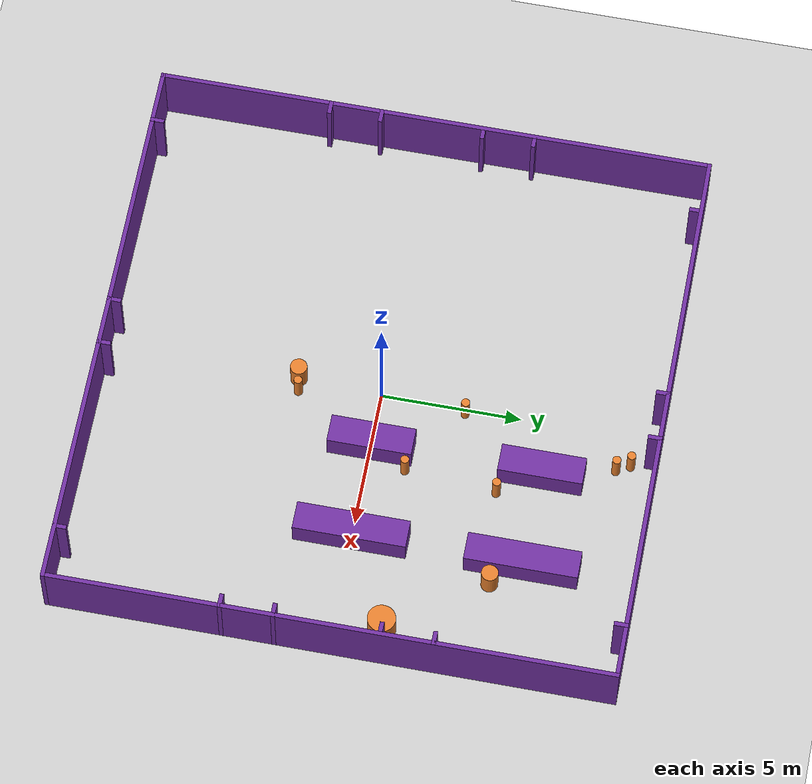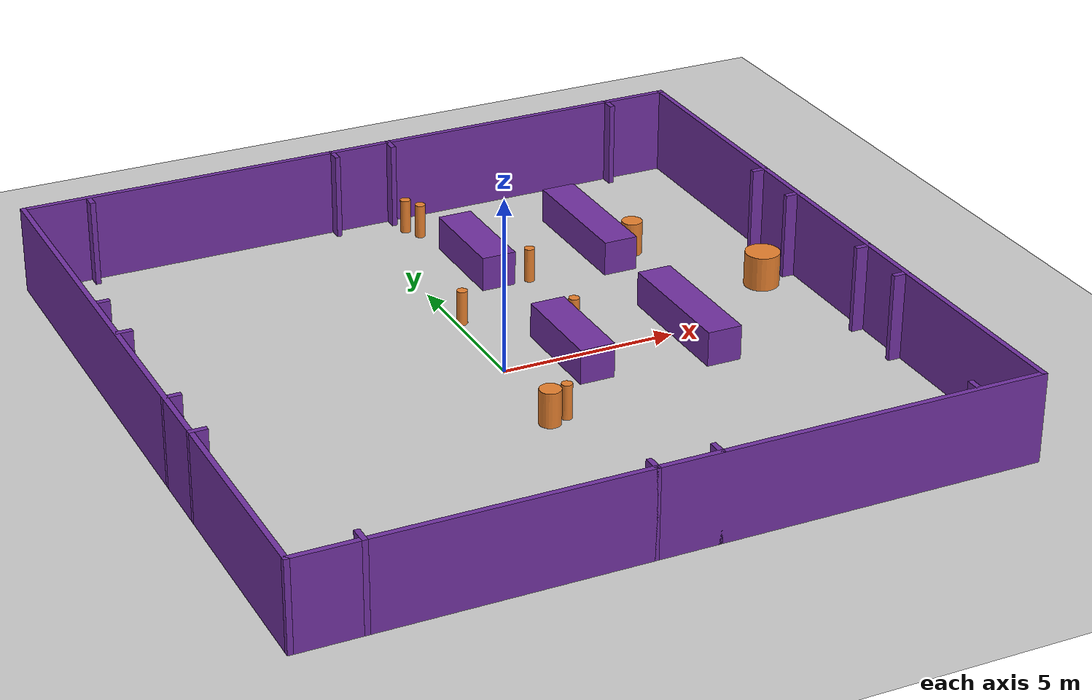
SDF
<sdf version="1.7">
 <world name="default">
  <model name="ground_plane">
   <static>1</static>
   <link name="link">
    <collision name="collision">
     <geometry><plane><normal>0 0 1</normal><size>100 100</size></plane></geometry>
     <surface>
      <contact><collide_bitmask>65535</collide_bitmask></contact>
      <friction><ode><mu>100</mu><mu2>50</mu2></ode></friction>
     </surface>
    </collision>
    <visual name="visual">
     <cast_shadows>0</cast_shadows>
     <geometry><plane><normal>0 0 1</normal><size>100 100</size></plane></geometry>
     <material>
      <script><uri>file://media/materials/scripts/gazebo.material</uri><name>Gazebo/Grey</name></script>
     </material>
    </visual>
   </link>
  </model>
  <model name="B_1_4_2">
   <link name="link_0">
    <inertial>
     <mass>40</mass>
     <inertia><ixx>56.6667</ixx><ixy>0</ixy><ixz>0</ixz><iyy>6.66667</iyy><iyz>0</iyz><izz>56.6667</izz></inertia>
    </inertial>
    <visual name="visual">
     <geometry><box><size>1 4 1</size></box></geometry>
     <material>
      <lighting>1</lighting>
      <script><uri>file://media/materials/scripts/gazebo.material</uri><name>Gazebo/Grey</name></script>
      <shader type="pixel"><normal_map>__default__</normal_map></shader>
      <ambient>0.44 0.19 0.63 1</ambient>
      <diffuse>0.7 0.7 0.7 1</diffuse>
      <specular>0.01 0.01 0.01 1</specular>
      <emissive>0 0 0 1</emissive>
     </material>
    </visual>
    <collision name="collision">
     <geometry><box><size>1 4 1</size></box></geometry>
     <surface>
      <friction>
       <ode><mu>1</mu><mu2>1</mu2><fdir1>0 0 0</fdir1><slip1>0</slip1><slip2>0</slip2></ode>
       <torsional>
        <coefficient>1</coefficient>
        <patch_radius>0</patch_radius>
        <surface_radius>0</surface_radius>
        <use_patch_radius>1</use_patch_radius>
        <ode><slip>0</slip></ode>
       </torsional>
      </friction>
      <bounce><restitution_coefficient>0</restitution_coefficient><threshold>1e+06</threshold></bounce>
      <contact>
       <collide_without_contact>0</collide_without_contact>
       <collide_without_contact_bitmask>1</collide_without_contact_bitmask>
       <collide_bitmask>1</collide_bitmask>
       <ode>
        <soft_cfm>0</soft_cfm>
        <soft_erp>0.2</soft_erp>
        <kp>1e+13</kp>
        <kd>1</kd>
        <max_vel>0.01</max_vel>
        <min_depth>0</min_depth>
       </ode>
       <bullet>
        <split_impulse>1</split_impulse>
        <split_impulse_penetration_threshold>-0.01</split_impulse_penetration_threshold>
        <soft_cfm>0</soft_cfm>
        <soft_erp>0.2</soft_erp>
        <kp>1e+13</kp>
        <kd>1</kd>
       </bullet>
      </contact>
     </surface>
    </collision>
   </link>
   <static>0</static>
   <pose>5.52612 6.00951 0.5 0 -0 0</pose>
  </model>
  <model name="B_1_4_3">
   <link name="link_0">
    <inertial>
     <mass>40</mass>
     <inertia><ixx>56.6667</ixx><ixy>0</ixy><ixz>0</ixz><iyy>6.66667</iyy><iyz>0</iyz><izz>56.6667</izz></inertia>
    </inertial>
    <visual name="visual">
     <geometry><box><size>1 4 1</size></box></geometry>
     <material>
      <lighting>1</lighting>
      <script><uri>file://media/materials/scripts/gazebo.material</uri><name>Gazebo/Grey</name></script>
      <shader type="pixel"><normal_map>__default__</normal_map></shader>
      <ambient>0.44 0.19 0.63 1</ambient>
      <diffuse>0.7 0.7 0.7 1</diffuse>
      <specular>0.01 0.01 0.01 1</specular>
      <emissive>0 0 0 1</emissive>
     </material>
    </visual>
    <collision name="collision">
     <geometry><box><size>1 4 1</size></box></geometry>
     <surface>
      <friction>
       <ode><mu>1</mu><mu2>1</mu2><fdir1>0 0 0</fdir1><slip1>0</slip1><slip2>0</slip2></ode>
       <torsional>
        <coefficient>1</coefficient>
        <patch_radius>0</patch_radius>
        <surface_radius>0</surface_radius>
        <use_patch_radius>1</use_patch_radius>
        <ode><slip>0</slip></ode>
       </torsional>
      </friction>
      <bounce><restitution_coefficient>0</restitution_coefficient><threshold>1e+06</threshold></bounce>
      <contact>
       <collide_without_contact>0</collide_without_contact>
       <collide_without_contact_bitmask>1</collide_without_contact_bitmask>
       <collide_bitmask>1</collide_bitmask>
       <ode>
        <soft_cfm>0</soft_cfm>
        <soft_erp>0.2</soft_erp>
        <kp>1e+13</kp>
        <kd>1</kd>
        <max_vel>0.01</max_vel>
        <min_depth>0</min_depth>
       </ode>
       <bullet>
        <split_impulse>1</split_impulse>
        <split_impulse_penetration_threshold>-0.01</split_impulse_penetration_threshold>
        <soft_cfm>0</soft_cfm>
        <soft_erp>0.2</soft_erp>
        <kp>1e+13</kp>
        <kd>1</kd>
       </bullet>
      </contact>
     </surface>
    </collision>
   </link>
   <static>0</static>
   <pose>5.49347 -0.022705 0.5 0 -0 0</pose>
  </model>
  <model name="B_1_3_0">
   <link name="link_1">
    <inertial>
     <mass>30</mass>
     <inertia><ixx>25</ixx><ixy>0</ixy><ixz>0</ixz><iyy>5</iyy><iyz>0</iyz><izz>25</izz></inertia>
    </inertial>
    <visual name="visual">
     <geometry><box><size>1 3 1</size></box></geometry>
     <material>
      <lighting>1</lighting>
      <script><uri>file://media/materials/scripts/gazebo.material</uri><name>Gazebo/Grey</name></script>
      <shader type="pixel"><normal_map>__default__</normal_map></shader>
      <ambient>0.44 0.19 0.63 1</ambient>
      <diffuse>0.7 0.7 0.7 1</diffuse>
      <specular>0.01 0.01 0.01 1</specular>
      <emissive>0 0 0 1</emissive>
     </material>
    </visual>
    <collision name="collision">
     <geometry><box><size>1 3 1</size></box></geometry>
     <surface>
      <friction>
       <ode><mu>1</mu><mu2>1</mu2><fdir1>0 0 0</fdir1><slip1>0</slip1><slip2>0</slip2></ode>
       <torsional>
        <coefficient>1</coefficient>
        <patch_radius>0</patch_radius>
        <surface_radius>0</surface_radius>
        <use_patch_radius>1</use_patch_radius>
        <ode><slip>0</slip></ode>
       </torsional>
      </friction>
      <bounce><restitution_coefficient>0</restitution_coefficient><threshold>1e+06</threshold></bounce>
      <contact>
       <collide_without_contact>0</collide_without_contact>
       <collide_without_contact_bitmask>1</collide_without_contact_bitmask>
       <collide_bitmask>1</collide_bitmask>
       <ode>
        <soft_cfm>0</soft_cfm>
        <soft_erp>0.2</soft_erp>
        <kp>1e+13</kp>
        <kd>1</kd>
        <max_vel>0.01</max_vel>
        <min_depth>0</min_depth>
       </ode>
       <bullet>
        <split_impulse>1</split_impulse>
        <split_impulse_penetration_threshold>-0.01</split_impulse_penetration_threshold>
        <soft_cfm>0</soft_cfm>
        <soft_erp>0.2</soft_erp>
        <kp>1e+13</kp>
        <kd>1</kd>
       </bullet>
      </contact>
     </surface>
    </collision>
   </link>
   <static>0</static>
   <pose>1.99632 6.07045 0.5 0 -0 0</pose>
  </model>
  <model name="B_1_3_3">
   <link name="link_1">
    <inertial>
     <mass>30</mass>
     <inertia><ixx>25</ixx><ixy>0</ixy><ixz>0</ixz><iyy>5</iyy><iyz>0</iyz><izz>25</izz></inertia>
    </inertial>
    <visual name="visual">
     <geometry><box><size>1 3 1</size></box></geometry>
     <material>
      <lighting>1</lighting>
      <script><uri>file://media/materials/scripts/gazebo.material</uri><name>Gazebo/Grey</name></script>
      <shader type="pixel"><normal_map>__default__</normal_map></shader>
      <ambient>0.44 0.19 0.63 1</ambient>
      <diffuse>0.7 0.7 0.7 1</diffuse>
      <specular>0.01 0.01 0.01 1</specular>
      <emissive>0 0 0 1</emissive>
     </material>
    </visual>
    <collision name="collision">
     <geometry><box><size>1 3 1</size></box></geometry>
     <surface>
      <friction>
       <ode><mu>1</mu><mu2>1</mu2><fdir1>0 0 0</fdir1><slip1>0</slip1><slip2>0</slip2></ode>
       <torsional>
        <coefficient>1</coefficient>
        <patch_radius>0</patch_radius>
        <surface_radius>0</surface_radius>
        <use_patch_radius>1</use_patch_radius>
        <ode><slip>0</slip></ode>
       </torsional>
      </friction>
      <bounce><restitution_coefficient>0</restitution_coefficient><threshold>1e+06</threshold></bounce>
      <contact>
       <collide_without_contact>0</collide_without_contact>
       <collide_without_contact_bitmask>1</collide_without_contact_bitmask>
       <collide_bitmask>1</collide_bitmask>
       <ode>
        <soft_cfm>0</soft_cfm>
        <soft_erp>0.2</soft_erp>
        <kp>1e+13</kp>
        <kd>1</kd>
        <max_vel>0.01</max_vel>
        <min_depth>0</min_depth>
       </ode>
       <bullet>
        <split_impulse>1</split_impulse>
        <split_impulse_penetration_threshold>-0.01</split_impulse_penetration_threshold>
        <soft_cfm>0</soft_cfm>
        <soft_erp>0.2</soft_erp>
        <kp>1e+13</kp>
        <kd>1</kd>
       </bullet>
      </contact>
     </surface>
    </collision>
   </link>
   <static>0</static>
   <pose>1.99973 0.020044 0.5 0 -0 0</pose>
  </model>
  <model name="shelter_20_20">
   <pose>0.003122 0.05499 0 0 -0 0</pose>
   <link name="Wall_0">
    <collision name="Wall_0_Collision">
     <geometry><box><size>20 0.15 2.5</size></box></geometry>
     <pose>0 0 1.25 0 -0 0</pose>
    </collision>
    <visual name="Wall_0_Visual">
     <pose>0 0 1.25 0 -0 0</pose>
     <geometry><box><size>20 0.15 2.5</size></box></geometry>
     <material>
      <script><uri>file://media/materials/scripts/gazebo.material</uri><name>Gazebo/Grey</name></script>
      <ambient>0.439216 0.188235 0.627451 1</ambient>
     </material>
     <meta><layer>0</layer></meta>
    </visual>
    <pose>-0 9.925 0 0 -0 0</pose>
   </link>
   <link name="Wall_1">
    <collision name="Wall_1_Collision">
     <geometry><box><size>20 0.15 2.5</size></box></geometry>
     <pose>0 0 1.25 0 -0 0</pose>
    </collision>
    <visual name="Wall_1_Visual">
     <pose>0 0 1.25 0 -0 0</pose>
     <geometry><box><size>20 0.15 2.5</size></box></geometry>
     <material>
      <script><uri>file://media/materials/scripts/gazebo.material</uri><name>Gazebo/Grey</name></script>
      <ambient>0.439216 0.188235 0.627451 1</ambient>
     </material>
     <meta><layer>0</layer></meta>
    </visual>
    <pose>9.925 0 0 0 -0 -1.5708</pose>
   </link>
   <link name="Wall_2">
    <collision name="Wall_2_Collision">
     <geometry><box><size>20 0.15 2.5</size></box></geometry>
     <pose>0 0 1.25 0 -0 0</pose>
    </collision>
    <visual name="Wall_2_Visual">
     <pose>0 0 1.25 0 -0 0</pose>
     <geometry><box><size>20 0.15 2.5</size></box></geometry>
     <material>
      <script><uri>file://media/materials/scripts/gazebo.material</uri><name>Gazebo/Grey</name></script>
      <ambient>0.439216 0.188235 0.627451 1</ambient>
     </material>
     <meta><layer>0</layer></meta>
    </visual>
    <pose>-0 -9.925 0 0 -0 3.14159</pose>
   </link>
   <link name="Wall_27">
    <collision name="Wall_27_Collision">
     <geometry><box><size>0.5 0.15 2.5</size></box></geometry>
     <pose>0 0 1.25 0 -0 0</pose>
    </collision>
    <visual name="Wall_27_Visual">
     <pose>0 0 1.25 0 -0 0</pose>
     <geometry><box><size>0.5 0.15 2.5</size></box></geometry>
     <material>
      <script><uri>file://media/materials/scripts/gazebo.material</uri><name>Gazebo/Grey</name></script>
      <ambient>0.439216 0.188235 0.627451 1</ambient>
     </material>
     <meta><layer>0</layer></meta>
    </visual>
    <pose>8.075 -9.75 0 0 -0 1.5708</pose>
   </link>
   <link name="Wall_3">
    <collision name="Wall_3_Collision">
     <geometry><box><size>20 0.15 2.5</size></box></geometry>
     <pose>0 0 1.25 0 -0 0</pose>
    </collision>
    <visual name="Wall_3_Visual">
     <pose>0 0 1.25 0 -0 0</pose>
     <geometry><box><size>20 0.15 2.5</size></box></geometry>
     <material>
      <script><uri>file://media/materials/scripts/gazebo.material</uri><name>Gazebo/Grey</name></script>
      <ambient>0.439216 0.188235 0.627451 1</ambient>
     </material>
     <meta><layer>0</layer></meta>
    </visual>
    <pose>-9.925 0 0 0 -0 1.5708</pose>
   </link>
   <link name="Wall_30">
    <collision name="Wall_30_Collision">
     <geometry><box><size>0.5 0.15 2.5</size></box></geometry>
     <pose>0 0 1.25 0 -0 0</pose>
    </collision>
    <visual name="Wall_30_Visual">
     <pose>0 0 1.25 0 -0 0</pose>
     <geometry><box><size>0.5 0.15 2.5</size></box></geometry>
     <material>
      <script><uri>file://media/materials/scripts/gazebo.material</uri><name>Gazebo/Grey</name></script>
      <ambient>0.439216 0.188235 0.627451 1</ambient>
     </material>
     <meta><layer>0</layer></meta>
    </visual>
    <pose>-8.075 -9.75 0 0 -0 1.5708</pose>
   </link>
   <link name="Wall_33">
    <collision name="Wall_33_Collision">
     <geometry><box><size>0.5 0.15 2.5</size></box></geometry>
     <pose>0 0 1.25 0 -0 0</pose>
    </collision>
    <visual name="Wall_33_Visual">
     <pose>0 0 1.25 0 -0 0</pose>
     <geometry><box><size>0.5 0.15 2.5</size></box></geometry>
     <material>
      <script><uri>file://media/materials/scripts/gazebo.material</uri><name>Gazebo/Grey</name></script>
      <ambient>0.439216 0.188235 0.627451 1</ambient>
     </material>
     <meta><layer>0</layer></meta>
    </visual>
    <pose>-0.775 -9.75 0 0 -0 1.5708</pose>
   </link>
   <link name="Wall_36">
    <collision name="Wall_36_Collision">
     <geometry><box><size>0.5 0.15 2.5</size></box></geometry>
     <pose>0 0 1.25 0 -0 0</pose>
    </collision>
    <visual name="Wall_36_Visual">
     <pose>0 0 1.25 0 -0 0</pose>
     <geometry><box><size>0.5 0.15 2.5</size></box></geometry>
     <material>
      <script><uri>file://media/materials/scripts/gazebo.material</uri><name>Gazebo/Grey</name></script>
      <ambient>0.439216 0.188235 0.627451 1</ambient>
     </material>
     <meta><layer>0</layer></meta>
    </visual>
    <pose>0.925 -9.75 0 0 -0 1.5708</pose>
   </link>
   <link name="Wall_39">
    <collision name="Wall_39_Collision">
     <geometry><box><size>0.5 0.15 2.5</size></box></geometry>
     <pose>0 0 1.25 0 -0 0</pose>
    </collision>
    <visual name="Wall_39_Visual">
     <pose>0 0 1.25 0 -0 0</pose>
     <geometry><box><size>0.5 0.15 2.5</size></box></geometry>
     <material>
      <script><uri>file://media/materials/scripts/gazebo.material</uri><name>Gazebo/Grey</name></script>
      <ambient>0.439216 0.188235 0.627451 1</ambient>
     </material>
     <meta><layer>0</layer></meta>
    </visual>
    <pose>-8.075 9.75 0 0 -0 -1.5708</pose>
   </link>
   <link name="Wall_42">
    <collision name="Wall_42_Collision">
     <geometry><box><size>0.5 0.15 2.5</size></box></geometry>
     <pose>0 0 1.25 0 -0 0</pose>
    </collision>
    <visual name="Wall_42_Visual">
     <pose>0 0 1.25 0 -0 0</pose>
     <geometry><box><size>0.5 0.15 2.5</size></box></geometry>
     <material>
      <script><uri>file://media/materials/scripts/gazebo.material</uri><name>Gazebo/Grey</name></script>
      <ambient>0.439216 0.188235 0.627451 1</ambient>
     </material>
     <meta><layer>0</layer></meta>
    </visual>
    <pose>8.075 9.75 0 0 -0 -1.5708</pose>
   </link>
   <link name="Wall_45">
    <collision name="Wall_45_Collision">
     <geometry><box><size>0.5 0.15 2.5</size></box></geometry>
     <pose>0 0 1.25 0 -0 0</pose>
    </collision>
    <visual name="Wall_45_Visual">
     <pose>0 0 1.25 0 -0 0</pose>
     <geometry><box><size>0.5 0.15 2.5</size></box></geometry>
     <material>
      <script><uri>file://media/materials/scripts/gazebo.material</uri><name>Gazebo/Grey</name></script>
      <ambient>0.439216 0.188235 0.627451 1</ambient>
     </material>
     <meta><layer>0</layer></meta>
    </visual>
    <pose>-0.775 9.75 0 0 -0 -1.5708</pose>
   </link>
   <link name="Wall_51">
    <collision name="Wall_51_Collision">
     <geometry><box><size>0.5 0.15 2.5</size></box></geometry>
     <pose>0 0 1.25 0 -0 0</pose>
    </collision>
    <visual name="Wall_51_Visual">
     <pose>0 0 1.25 0 -0 0</pose>
     <geometry><box><size>0.5 0.15 2.5</size></box></geometry>
     <material>
      <script><uri>file://media/materials/scripts/gazebo.material</uri><name>Gazebo/Grey</name></script>
      <ambient>0.439216 0.188235 0.627451 1</ambient>
     </material>
     <meta><layer>0</layer></meta>
    </visual>
    <pose>0.962943 9.75 0 0 -0 -1.5708</pose>
   </link>
   <link name="Wall_54">
    <collision name="Wall_54_Collision">
     <geometry><box><size>0.5 0.15 2.5</size></box></geometry>
     <pose>0 0 1.25 0 -0 0</pose>
    </collision>
    <visual name="Wall_54_Visual">
     <pose>0 0 1.25 0 -0 0</pose>
     <geometry><box><size>0.5 0.15 2.5</size></box></geometry>
     <material>
      <script><uri>file://media/materials/scripts/gazebo.material</uri><name>Gazebo/Grey</name></script>
      <ambient>0.439216 0.188235 0.627451 1</ambient>
     </material>
     <meta><layer>0</layer></meta>
    </visual>
    <pose>-9.75 1.775 0 0 -0 0</pose>
   </link>
   <link name="Wall_57">
    <collision name="Wall_57_Collision">
     <geometry><box><size>0.5 0.15 2.5</size></box></geometry>
     <pose>0 0 1.25 0 -0 0</pose>
    </collision>
    <visual name="Wall_57_Visual">
     <pose>0 0 1.25 0 -0 0</pose>
     <geometry><box><size>0.5 0.15 2.5</size></box></geometry>
     <material>
      <script><uri>file://media/materials/scripts/gazebo.material</uri><name>Gazebo/Grey</name></script>
      <ambient>0.439216 0.188235 0.627451 1</ambient>
     </material>
     <meta><layer>0</layer></meta>
    </visual>
    <pose>-9.75 3.625 0 0 -0 0</pose>
   </link>
   <link name="Wall_60">
    <collision name="Wall_60_Collision">
     <geometry><box><size>0.5 0.15 2.5</size></box></geometry>
     <pose>0 0 1.25 0 -0 0</pose>
    </collision>
    <visual name="Wall_60_Visual">
     <pose>0 0 1.25 0 -0 0</pose>
     <geometry><box><size>0.5 0.15 2.5</size></box></geometry>
     <material>
      <script><uri>file://media/materials/scripts/gazebo.material</uri><name>Gazebo/Grey</name></script>
      <ambient>0.439216 0.188235 0.627451 1</ambient>
     </material>
     <meta><layer>0</layer></meta>
    </visual>
    <pose>9.75 1.775 0 0 -0 3.14159</pose>
   </link>
   <link name="Wall_63">
    <collision name="Wall_63_Collision">
     <geometry><box><size>0.5 0.15 2.5</size></box></geometry>
     <pose>0 0 1.25 0 -0 0</pose>
    </collision>
    <visual name="Wall_63_Visual">
     <pose>0 0 1.25 0 -0 0</pose>
     <geometry><box><size>0.5 0.15 2.5</size></box></geometry>
     <material>
      <script><uri>file://media/materials/scripts/gazebo.material</uri><name>Gazebo/Grey</name></script>
      <ambient>0.439216 0.188235 0.627451 1</ambient>
     </material>
     <meta><layer>0</layer></meta>
    </visual>
    <pose>9.75 3.625 0 0 -0 3.14159</pose>
   </link>
   <link name="Wall_69">
    <collision name="Wall_69_Collision">
     <geometry><box><size>0.5 0.15 2.5</size></box></geometry>
     <pose>0 0 1.25 0 -0 0</pose>
    </collision>
    <visual name="Wall_69_Visual">
     <pose>0 0 1.25 0 -0 0</pose>
     <geometry><box><size>0.5 0.15 2.5</size></box></geometry>
     <material>
      <script><uri>file://media/materials/scripts/gazebo.material</uri><name>Gazebo/Grey</name></script>
      <ambient>0.439216 0.188235 0.627451 1</ambient>
     </material>
     <meta><layer>0</layer></meta>
    </visual>
    <pose>-9.75 -3.775 0 0 -0 0</pose>
   </link>
   <link name="Wall_83">
    <collision name="Wall_83_Collision">
     <geometry><box><size>0.5 0.15 2.5</size></box></geometry>
     <pose>0 0 1.25 0 -0 0</pose>
    </collision>
    <visual name="Wall_83_Visual">
     <pose>0 0 1.25 0 -0 0</pose>
     <geometry><box><size>0.5 0.15 2.5</size></box></geometry>
     <material>
      <script><uri>file://media/materials/scripts/gazebo.material</uri><name>Gazebo/Grey</name></script>
      <ambient>0.439216 0.188235 0.627451 1</ambient>
     </material>
     <meta><layer>0</layer></meta>
    </visual>
    <pose>-9.75 -1.925 0 0 -0 0</pose>
   </link>
   <link name="Wall_88">
    <collision name="Wall_88_Collision">
     <geometry><box><size>0.5 0.15 2.5</size></box></geometry>
     <pose>0 0 1.25 0 -0 0</pose>
    </collision>
    <visual name="Wall_88_Visual">
     <pose>0 0 1.25 0 -0 0</pose>
     <geometry><box><size>0.5 0.15 2.5</size></box></geometry>
     <material>
      <script><uri>file://media/materials/scripts/gazebo.material</uri><name>Gazebo/Grey</name></script>
      <ambient>0.439216 0.188235 0.627451 1</ambient>
     </material>
     <meta><layer>0</layer></meta>
    </visual>
    <pose>9.75 -1.925 0 0 -0 3.14159</pose>
   </link>
   <link name="Wall_90">
    <collision name="Wall_90_Collision">
     <geometry><box><size>0.5 0.15 2.5</size></box></geometry>
     <pose>0 0 1.25 0 -0 0</pose>
    </collision>
    <visual name="Wall_90_Visual">
     <pose>0 0 1.25 0 -0 0</pose>
     <geometry><box><size>0.5 0.15 2.5</size></box></geometry>
     <material>
      <script><uri>file://media/materials/scripts/gazebo.material</uri><name>Gazebo/Grey</name></script>
      <ambient>0.439216 0.188235 0.627451 1</ambient>
     </material>
     <meta><layer>0</layer></meta>
    </visual>
    <pose>9.75 -3.775 0 0 -0 0</pose>
   </link>
   <static>1</static>
  </model>
  <model name="C_03_1">
   <link name="link_3">
    <inertial>
     <mass>2.82743</mass>
     <inertia>
      <ixx>0.299237</ixx>
      <ixy>0</ixy>
      <ixz>0</ixz>
      <iyy>0.299237</iyy>
      <iyz>0</iyz>
      <izz>0.127235</izz>
     </inertia>
    </inertial>
    <visual name="visual">
     <geometry><cylinder><radius>0.15</radius><length>1</length></cylinder></geometry>
     <material>
      <lighting>1</lighting>
      <script><uri>file://media/materials/scripts/gazebo.material</uri><name>Gazebo/Grey</name></script>
      <shader type="pixel"><normal_map>__default__</normal_map></shader>
      <ambient>0.9 0.5 0.18 1</ambient>
      <diffuse>0.7 0.7 0.7 1</diffuse>
      <specular>0.01 0.01 0.01 1</specular>
      <emissive>0 0 0 1</emissive>
     </material>
    </visual>
    <collision name="collision">
     <geometry><cylinder><radius>0.15</radius><length>1</length></cylinder></geometry>
     <surface>
      <friction>
       <ode><mu>1</mu><mu2>1</mu2><fdir1>0 0 0</fdir1><slip1>0</slip1><slip2>0</slip2></ode>
       <torsional>
        <coefficient>1</coefficient>
        <patch_radius>0</patch_radius>
        <surface_radius>0</surface_radius>
        <use_patch_radius>1</use_patch_radius>
        <ode><slip>0</slip></ode>
       </torsional>
      </friction>
      <bounce><restitution_coefficient>0</restitution_coefficient><threshold>1e+06</threshold></bounce>
      <contact>
       <collide_without_contact>0</collide_without_contact>
       <collide_without_contact_bitmask>1</collide_without_contact_bitmask>
       <collide_bitmask>1</collide_bitmask>
       <ode>
        <soft_cfm>0</soft_cfm>
        <soft_erp>0.2</soft_erp>
        <kp>1e+13</kp>
        <kd>1</kd>
        <max_vel>0.01</max_vel>
        <min_depth>0</min_depth>
       </ode>
       <bullet>
        <split_impulse>1</split_impulse>
        <split_impulse_penetration_threshold>-0.01</split_impulse_penetration_threshold>
        <soft_cfm>0</soft_cfm>
        <soft_erp>0.2</soft_erp>
        <kp>1e+13</kp>
        <kd>1</kd>
       </bullet>
      </contact>
     </surface>
    </collision>
   </link>
   <static>0</static>
   <pose>0.165175 3.02823 0.499805 0 -0 6.3e-05</pose>
  </model>
  <model name="C_03_5">
   <link name="link_3">
    <inertial>
     <mass>2.82743</mass>
     <inertia>
      <ixx>0.299237</ixx>
      <ixy>0</ixy>
      <ixz>0</ixz>
      <iyy>0.299237</iyy>
      <iyz>0</iyz>
      <izz>0.127235</izz>
     </inertia>
    </inertial>
    <visual name="visual">
     <geometry><cylinder><radius>0.15</radius><length>1</length></cylinder></geometry>
     <material>
      <lighting>1</lighting>
      <script><uri>file://media/materials/scripts/gazebo.material</uri><name>Gazebo/Grey</name></script>
      <shader type="pixel"><normal_map>__default__</normal_map></shader>
      <ambient>0.9 0.5 0.18 1</ambient>
      <diffuse>0.7 0.7 0.7 1</diffuse>
      <specular>0.01 0.01 0.01 1</specular>
      <emissive>0 0 0 1</emissive>
     </material>
    </visual>
    <collision name="collision">
     <geometry><cylinder><radius>0.15</radius><length>1</length></cylinder></geometry>
     <surface>
      <friction>
       <ode><mu>1</mu><mu2>1</mu2><fdir1>0 0 0</fdir1><slip1>0</slip1><slip2>0</slip2></ode>
       <torsional>
        <coefficient>1</coefficient>
        <patch_radius>0</patch_radius>
        <surface_radius>0</surface_radius>
        <use_patch_radius>1</use_patch_radius>
        <ode><slip>0</slip></ode>
       </torsional>
      </friction>
      <bounce><restitution_coefficient>0</restitution_coefficient><threshold>1e+06</threshold></bounce>
      <contact>
       <collide_without_contact>0</collide_without_contact>
       <collide_without_contact_bitmask>1</collide_without_contact_bitmask>
       <collide_bitmask>1</collide_bitmask>
       <ode>
        <soft_cfm>0</soft_cfm>
        <soft_erp>0.2</soft_erp>
        <kp>1e+13</kp>
        <kd>1</kd>
        <max_vel>0.01</max_vel>
        <min_depth>0</min_depth>
       </ode>
       <bullet>
        <split_impulse>1</split_impulse>
        <split_impulse_penetration_threshold>-0.01</split_impulse_penetration_threshold>
        <soft_cfm>0</soft_cfm>
        <soft_erp>0.2</soft_erp>
        <kp>1e+13</kp>
        <kd>1</kd>
       </bullet>
      </contact>
     </surface>
    </collision>
   </link>
   <static>0</static>
   <pose>0.386846 -2.9139 0.499805 0 -0 4.7e-05</pose>
  </model>
  <model name="C_03_8">
   <link name="link_3">
    <inertial>
     <mass>2.82743</mass>
     <inertia>
      <ixx>0.299237</ixx>
      <ixy>0</ixy>
      <ixz>0</ixz>
      <iyy>0.299237</iyy>
      <iyz>0</iyz>
      <izz>0.127235</izz>
     </inertia>
    </inertial>
    <visual name="visual">
     <geometry><cylinder><radius>0.15</radius><length>1</length></cylinder></geometry>
     <material>
      <lighting>1</lighting>
      <script><uri>file://media/materials/scripts/gazebo.material</uri><name>Gazebo/Grey</name></script>
      <shader type="pixel"><normal_map>__default__</normal_map></shader>
      <ambient>0.9 0.5 0.18 1</ambient>
      <diffuse>0.7 0.7 0.7 1</diffuse>
      <specular>0.01 0.01 0.01 1</specular>
      <emissive>0 0 0 1</emissive>
     </material>
    </visual>
    <collision name="collision">
     <geometry><cylinder><radius>0.15</radius><length>1</length></cylinder></geometry>
     <surface>
      <friction>
       <ode><mu>1</mu><mu2>1</mu2><fdir1>0 0 0</fdir1><slip1>0</slip1><slip2>0</slip2></ode>
       <torsional>
        <coefficient>1</coefficient>
        <patch_radius>0</patch_radius>
        <surface_radius>0</surface_radius>
        <use_patch_radius>1</use_patch_radius>
        <ode><slip>0</slip></ode>
       </torsional>
      </friction>
      <bounce><restitution_coefficient>0</restitution_coefficient><threshold>1e+06</threshold></bounce>
      <contact>
       <collide_without_contact>0</collide_without_contact>
       <collide_without_contact_bitmask>1</collide_without_contact_bitmask>
       <collide_bitmask>1</collide_bitmask>
       <ode>
        <soft_cfm>0</soft_cfm>
        <soft_erp>0.2</soft_erp>
        <kp>1e+13</kp>
        <kd>1</kd>
        <max_vel>0.01</max_vel>
        <min_depth>0</min_depth>
       </ode>
       <bullet>
        <split_impulse>1</split_impulse>
        <split_impulse_penetration_threshold>-0.01</split_impulse_penetration_threshold>
        <soft_cfm>0</soft_cfm>
        <soft_erp>0.2</soft_erp>
        <kp>1e+13</kp>
        <kd>1</kd>
       </bullet>
      </contact>
     </surface>
    </collision>
   </link>
   <static>0</static>
   <pose>1.36353 8.60122 0.499805 0 -0 0</pose>
  </model>
  <model name="C_03_9">
   <link name="link_3">
    <inertial>
     <mass>2.82743</mass>
     <inertia>
      <ixx>0.299237</ixx>
      <ixy>0</ixy>
      <ixz>0</ixz>
      <iyy>0.299237</iyy>
      <iyz>0</iyz>
      <izz>0.127235</izz>
     </inertia>
    </inertial>
    <visual name="visual">
     <geometry><cylinder><radius>0.15</radius><length>1</length></cylinder></geometry>
     <material>
      <lighting>1</lighting>
      <script><uri>file://media/materials/scripts/gazebo.material</uri><name>Gazebo/Grey</name></script>
      <shader type="pixel"><normal_map>__default__</normal_map></shader>
      <ambient>0.9 0.5 0.18 1</ambient>
      <diffuse>0.7 0.7 0.7 1</diffuse>
      <specular>0.01 0.01 0.01 1</specular>
      <emissive>0 0 0 1</emissive>
     </material>
    </visual>
    <collision name="collision">
     <geometry><cylinder><radius>0.15</radius><length>1</length></cylinder></geometry>
     <surface>
      <friction>
       <ode><mu>1</mu><mu2>1</mu2><fdir1>0 0 0</fdir1><slip1>0</slip1><slip2>0</slip2></ode>
       <torsional>
        <coefficient>1</coefficient>
        <patch_radius>0</patch_radius>
        <surface_radius>0</surface_radius>
        <use_patch_radius>1</use_patch_radius>
        <ode><slip>0</slip></ode>
       </torsional>
      </friction>
      <bounce><restitution_coefficient>0</restitution_coefficient><threshold>1e+06</threshold></bounce>
      <contact>
       <collide_without_contact>0</collide_without_contact>
       <collide_without_contact_bitmask>1</collide_without_contact_bitmask>
       <collide_bitmask>1</collide_bitmask>
       <ode>
        <soft_cfm>0</soft_cfm>
        <soft_erp>0.2</soft_erp>
        <kp>1e+13</kp>
        <kd>1</kd>
        <max_vel>0.01</max_vel>
        <min_depth>0</min_depth>
       </ode>
       <bullet>
        <split_impulse>1</split_impulse>
        <split_impulse_penetration_threshold>-0.01</split_impulse_penetration_threshold>
        <soft_cfm>0</soft_cfm>
        <soft_erp>0.2</soft_erp>
        <kp>1e+13</kp>
        <kd>1</kd>
       </bullet>
      </contact>
     </surface>
    </collision>
   </link>
   <static>0</static>
   <pose>1.10623 9.08374 0.499805 0 -0 0</pose>
  </model>
  <model name="C_03_11">
   <link name="link_3">
    <inertial>
     <mass>2.82743</mass>
     <inertia>
      <ixx>0.299237</ixx>
      <ixy>0</ixy>
      <ixz>0</ixz>
      <iyy>0.299237</iyy>
      <iyz>0</iyz>
      <izz>0.127235</izz>
     </inertia>
    </inertial>
    <visual name="visual">
     <geometry><cylinder><radius>0.15</radius><length>1</length></cylinder></geometry>
     <material>
      <lighting>1</lighting>
      <script><uri>file://media/materials/scripts/gazebo.material</uri><name>Gazebo/Grey</name></script>
      <shader type="pixel"><normal_map>__default__</normal_map></shader>
      <ambient>0.9 0.5 0.18 1</ambient>
      <diffuse>0.7 0.7 0.7 1</diffuse>
      <specular>0.01 0.01 0.01 1</specular>
      <emissive>0 0 0 1</emissive>
     </material>
    </visual>
    <collision name="collision">
     <geometry><cylinder><radius>0.15</radius><length>1</length></cylinder></geometry>
     <surface>
      <friction>
       <ode><mu>1</mu><mu2>1</mu2><fdir1>0 0 0</fdir1><slip1>0</slip1><slip2>0</slip2></ode>
       <torsional>
        <coefficient>1</coefficient>
        <patch_radius>0</patch_radius>
        <surface_radius>0</surface_radius>
        <use_patch_radius>1</use_patch_radius>
        <ode><slip>0</slip></ode>
       </torsional>
      </friction>
      <bounce><restitution_coefficient>0</restitution_coefficient><threshold>1e+06</threshold></bounce>
      <contact>
       <collide_without_contact>0</collide_without_contact>
       <collide_without_contact_bitmask>1</collide_without_contact_bitmask>
       <collide_bitmask>1</collide_bitmask>
       <ode>
        <soft_cfm>0</soft_cfm>
        <soft_erp>0.2</soft_erp>
        <kp>1e+13</kp>
        <kd>1</kd>
        <max_vel>0.01</max_vel>
        <min_depth>0</min_depth>
       </ode>
       <bullet>
        <split_impulse>1</split_impulse>
        <split_impulse_penetration_threshold>-0.01</split_impulse_penetration_threshold>
        <soft_cfm>0</soft_cfm>
        <soft_erp>0.2</soft_erp>
        <kp>1e+13</kp>
        <kd>1</kd>
       </bullet>
      </contact>
     </surface>
    </collision>
   </link>
   <static>0</static>
   <pose>2.714 1.34173 0.499805 0 -0 3.4e-05</pose>
  </model>
  <model name="C_03_12">
   <link name="link_3">
    <inertial>
     <mass>2.82743</mass>
     <inertia>
      <ixx>0.299237</ixx>
      <ixy>0</ixy>
      <ixz>0</ixz>
      <iyy>0.299237</iyy>
      <iyz>0</iyz>
      <izz>0.127235</izz>
     </inertia>
    </inertial>
    <visual name="visual">
     <geometry><cylinder><radius>0.15</radius><length>1</length></cylinder></geometry>
     <material>
      <lighting>1</lighting>
      <script><uri>file://media/materials/scripts/gazebo.material</uri><name>Gazebo/Grey</name></script>
      <shader type="pixel"><normal_map>__default__</normal_map></shader>
      <ambient>0.9 0.5 0.18 1</ambient>
      <diffuse>0.7 0.7 0.7 1</diffuse>
      <specular>0.01 0.01 0.01 1</specular>
      <emissive>0 0 0 1</emissive>
     </material>
    </visual>
    <collision name="collision">
     <geometry><cylinder><radius>0.15</radius><length>1</length></cylinder></geometry>
     <surface>
      <friction>
       <ode><mu>1</mu><mu2>1</mu2><fdir1>0 0 0</fdir1><slip1>0</slip1><slip2>0</slip2></ode>
       <torsional>
        <coefficient>1</coefficient>
        <patch_radius>0</patch_radius>
        <surface_radius>0</surface_radius>
        <use_patch_radius>1</use_patch_radius>
        <ode><slip>0</slip></ode>
       </torsional>
      </friction>
      <bounce><restitution_coefficient>0</restitution_coefficient><threshold>1e+06</threshold></bounce>
      <contact>
       <collide_without_contact>0</collide_without_contact>
       <collide_without_contact_bitmask>1</collide_without_contact_bitmask>
       <collide_bitmask>1</collide_bitmask>
       <ode>
        <soft_cfm>0</soft_cfm>
        <soft_erp>0.2</soft_erp>
        <kp>1e+13</kp>
        <kd>1</kd>
        <max_vel>0.01</max_vel>
        <min_depth>0</min_depth>
       </ode>
       <bullet>
        <split_impulse>1</split_impulse>
        <split_impulse_penetration_threshold>-0.01</split_impulse_penetration_threshold>
        <soft_cfm>0</soft_cfm>
        <soft_erp>0.2</soft_erp>
        <kp>1e+13</kp>
        <kd>1</kd>
       </bullet>
      </contact>
     </surface>
    </collision>
   </link>
   <static>0</static>
   <pose>2.96797 4.63708 0.499805 0 -0 0</pose>
  </model>
  <model name="C_1_0">
   <link name="link_2">
    <inertial>
     <mass>7.85398</mass>
     <inertia><ixx>1.14537</ixx><ixy>0</ixy><ixz>0</ixz><iyy>1.14537</iyy><iyz>0</iyz><izz>0.981748</izz></inertia>
    </inertial>
    <visual name="visual">
     <geometry><cylinder><radius>0.5</radius><length>1</length></cylinder></geometry>
     <material>
      <lighting>1</lighting>
      <script><uri>file://media/materials/scripts/gazebo.material</uri><name>Gazebo/Grey</name></script>
      <shader type="pixel"><normal_map>__default__</normal_map></shader>
      <ambient>0.9 0.5 0.18 1</ambient>
      <diffuse>0.7 0.7 0.7 1</diffuse>
      <specular>0.01 0.01 0.01 1</specular>
      <emissive>0 0 0 1</emissive>
     </material>
    </visual>
    <collision name="collision">
     <geometry><cylinder><radius>0.5</radius><length>1</length></cylinder></geometry>
     <surface>
      <friction>
       <ode><mu>1</mu><mu2>1</mu2><fdir1>0 0 0</fdir1><slip1>0</slip1><slip2>0</slip2></ode>
       <torsional>
        <coefficient>1</coefficient>
        <patch_radius>0</patch_radius>
        <surface_radius>0</surface_radius>
        <use_patch_radius>1</use_patch_radius>
        <ode><slip>0</slip></ode>
       </torsional>
      </friction>
      <bounce><restitution_coefficient>0</restitution_coefficient><threshold>1e+06</threshold></bounce>
      <contact>
       <collide_without_contact>0</collide_without_contact>
       <collide_without_contact_bitmask>1</collide_without_contact_bitmask>
       <collide_bitmask>1</collide_bitmask>
       <ode>
        <soft_cfm>0</soft_cfm>
        <soft_erp>0.2</soft_erp>
        <kp>1e+13</kp>
        <kd>1</kd>
        <max_vel>0.01</max_vel>
        <min_depth>0</min_depth>
       </ode>
       <bullet>
        <split_impulse>1</split_impulse>
        <split_impulse_penetration_threshold>-0.01</split_impulse_penetration_threshold>
        <soft_cfm>0</soft_cfm>
        <soft_erp>0.2</soft_erp>
        <kp>1e+13</kp>
        <kd>1</kd>
       </bullet>
      </contact>
     </surface>
    </collision>
   </link>
   <static>0</static>
   <pose>8.75957 1.66376 0.499805 0 -0 0</pose>
  </model>
  <model name="C_06_1">
   <link name="link_3">
    <inertial>
     <mass>2.82743</mass>
     <inertia>
      <ixx>0.299237</ixx>
      <ixy>0</ixy>
      <ixz>0</ixz>
      <iyy>0.299237</iyy>
      <iyz>0</iyz>
      <izz>0.127235</izz>
     </inertia>
    </inertial>
    <visual name="visual">
     <geometry><cylinder><radius>0.3</radius><length>1</length></cylinder></geometry>
     <material>
      <lighting>1</lighting>
      <script><uri>file://media/materials/scripts/gazebo.material</uri><name>Gazebo/Grey</name></script>
      <shader type="pixel"><normal_map>__default__</normal_map></shader>
      <ambient>0.9 0.5 0.18 1</ambient>
      <diffuse>0.7 0.7 0.7 1</diffuse>
      <specular>0.01 0.01 0.01 1</specular>
      <emissive>0 0 0 1</emissive>
     </material>
    </visual>
    <collision name="collision">
     <geometry><cylinder><radius>0.3</radius><length>1</length></cylinder></geometry>
     <surface>
      <friction>
       <ode><mu>1</mu><mu2>1</mu2><fdir1>0 0 0</fdir1><slip1>0</slip1><slip2>0</slip2></ode>
       <torsional>
        <coefficient>1</coefficient>
        <patch_radius>0</patch_radius>
        <surface_radius>0</surface_radius>
        <use_patch_radius>1</use_patch_radius>
        <ode><slip>0</slip></ode>
       </torsional>
      </friction>
      <bounce><restitution_coefficient>0</restitution_coefficient><threshold>1e+06</threshold></bounce>
      <contact>
       <collide_without_contact>0</collide_without_contact>
       <collide_without_contact_bitmask>1</collide_without_contact_bitmask>
       <collide_bitmask>1</collide_bitmask>
       <ode>
        <soft_cfm>0</soft_cfm>
        <soft_erp>0.2</soft_erp>
        <kp>1e+13</kp>
        <kd>1</kd>
        <max_vel>0.01</max_vel>
        <min_depth>0</min_depth>
       </ode>
       <bullet>
        <split_impulse>1</split_impulse>
        <split_impulse_penetration_threshold>-0.01</split_impulse_penetration_threshold>
        <soft_cfm>0</soft_cfm>
        <soft_erp>0.2</soft_erp>
        <kp>1e+13</kp>
        <kd>1</kd>
       </bullet>
      </contact>
     </surface>
    </collision>
   </link>
   <static>0</static>
   <pose>6.3977 5.01039 0.499805 0 -0 0</pose>
  </model>
  <model name="C_06_2">
   <link name="link_3">
    <inertial>
     <mass>2.82743</mass>
     <inertia>
      <ixx>0.299237</ixx>
      <ixy>0</ixy>
      <ixz>0</ixz>
      <iyy>0.299237</iyy>
      <iyz>0</iyz>
      <izz>0.127235</izz>
     </inertia>
    </inertial>
    <visual name="visual">
     <geometry><cylinder><radius>0.3</radius><length>1</length></cylinder></geometry>
     <material>
      <lighting>1</lighting>
      <script><uri>file://media/materials/scripts/gazebo.material</uri><name>Gazebo/Grey</name></script>
      <shader type="pixel"><normal_map>__default__</normal_map></shader>
      <ambient>0.9 0.5 0.18 1</ambient>
      <diffuse>0.7 0.7 0.7 1</diffuse>
      <specular>0.01 0.01 0.01 1</specular>
      <emissive>0 0 0 1</emissive>
     </material>
    </visual>
    <collision name="collision">
     <geometry><cylinder><radius>0.3</radius><length>1</length></cylinder></geometry>
     <surface>
      <friction>
       <ode><mu>1</mu><mu2>1</mu2><fdir1>0 0 0</fdir1><slip1>0</slip1><slip2>0</slip2></ode>
       <torsional>
        <coefficient>1</coefficient>
        <patch_radius>0</patch_radius>
        <surface_radius>0</surface_radius>
        <use_patch_radius>1</use_patch_radius>
        <ode><slip>0</slip></ode>
       </torsional>
      </friction>
      <bounce><restitution_coefficient>0</restitution_coefficient><threshold>1e+06</threshold></bounce>
      <contact>
       <collide_without_contact>0</collide_without_contact>
       <collide_without_contact_bitmask>1</collide_without_contact_bitmask>
       <collide_bitmask>1</collide_bitmask>
       <ode>
        <soft_cfm>0</soft_cfm>
        <soft_erp>0.2</soft_erp>
        <kp>1e+13</kp>
        <kd>1</kd>
        <max_vel>0.01</max_vel>
        <min_depth>0</min_depth>
       </ode>
       <bullet>
        <split_impulse>1</split_impulse>
        <split_impulse_penetration_threshold>-0.01</split_impulse_penetration_threshold>
        <soft_cfm>0</soft_cfm>
        <soft_erp>0.2</soft_erp>
        <kp>1e+13</kp>
        <kd>1</kd>
       </bullet>
      </contact>
     </surface>
    </collision>
   </link>
   <static>0</static>
   <pose>-0.120026 -2.9883 0.499805 0 -0 0</pose>
  </model>
 </world>
</sdf>
